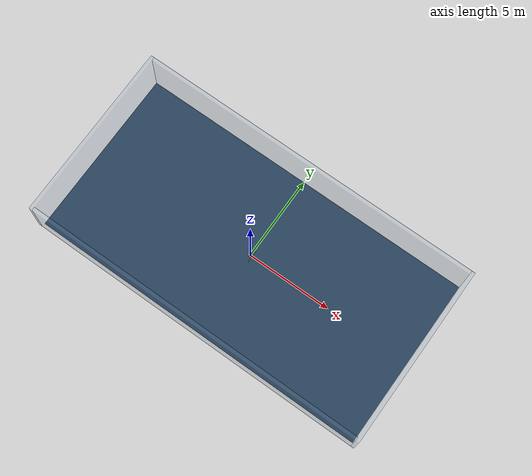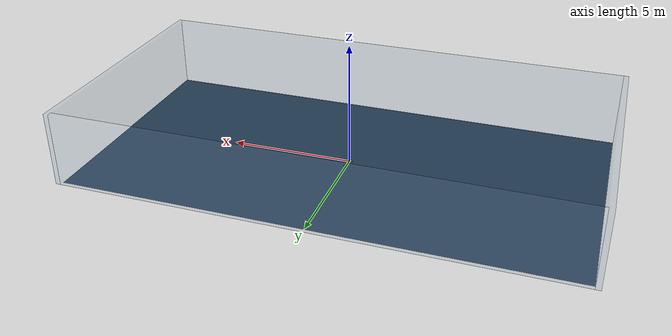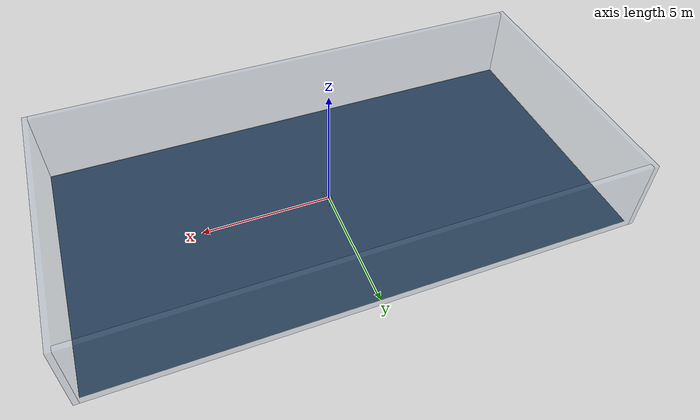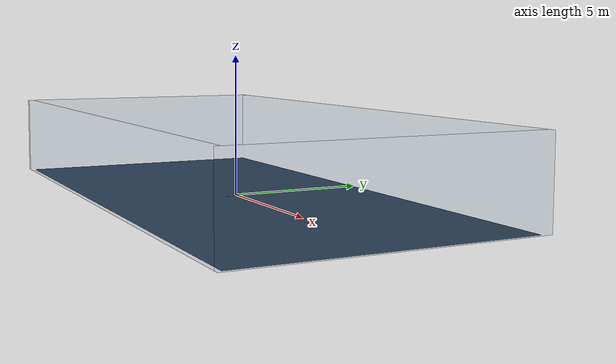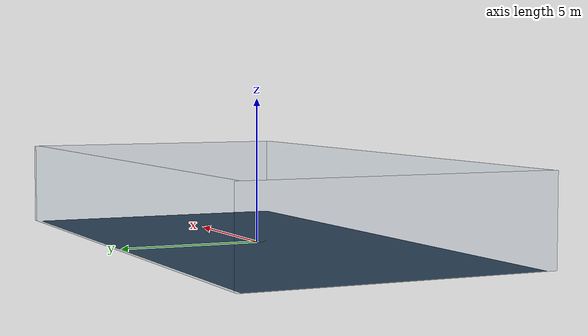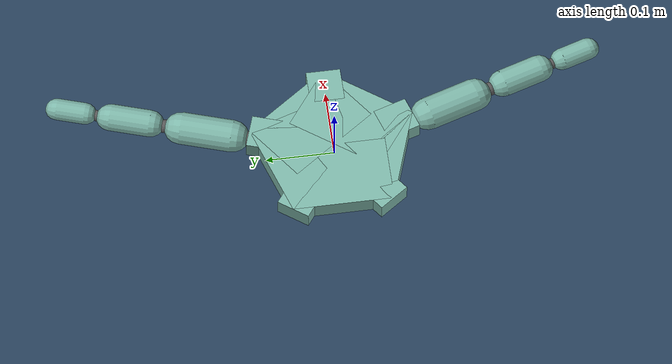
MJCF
<mujoco model="AquariumArena">
  <compiler angle="radian"/>
  <option density="1000" viscosity="0.00089999999999999998"/>
  <visual>
    <headlight ambient="0.40000000000000002 0.40000000000000002 0.40000000000000002" diffuse="0.80000000000000004 0.80000000000000004 0.80000000000000004" specular="0.10000000000000001 0.10000000000000001 0.10000000000000001"/>
  </visual>
  <default>
    <default class="/"/>
    <default class="BrittleStarMorphology/">
      <geom contype="1" conaffinity="0" condim="4" density="2000"/>
    </default>
  </default>
  <asset>
    <texture name="//unnamed_texture_0" type="skybox" builtin="flat" rgb1="1 1 1" rgb2="1 1 1" width="200" height="200"/>
    <texture name="groundplane" type="2d" builtin="checker" rgb1="0.20000000000000001 0.29999999999999999 0.40000000000000002" rgb2="0.10000000000000001 0.20000000000000001 0.29999999999999999" mark="edge" markrgb="0.80000000000000004 0.80000000000000004 0.80000000000000004" width="200" height="200"/>
    <material name="groundplane" class="/" texture="groundplane" texrepeat="2 2" texuniform="true" reflectance="0.20000000000000001"/>
  </asset>
  <worldbody>
    <camera name="top_camera" class="/" pos="0 0 20" quat="1 0 0 0"/>
    <light name="//unnamed_light_0" class="/" directional="true" castshadow="false" pos="-20 0 20" dir="0 0 -0.5" diffuse="0.10000000000000001 0.10000000000000001 0.10000000000000001"/>
    <geom name="groundplane" class="/" type="plane" contype="0" conaffinity="1" condim="4" size="10 5 0.25" material="groundplane"/>
    <geom name="north_wall" class="/" type="box" contype="0" conaffinity="0" size="10 0.10000000000000001 1.5" rgba="0.45098039215686275 0.57647058823529407 0.70196078431372544 0.19607843137254902" pos="0 5.0999999999999996 1.5"/>
    <geom name="south_wall" class="/" type="box" contype="0" conaffinity="0" size="10 0.10000000000000001 1.5" rgba="0.45098039215686275 0.57647058823529407 0.70196078431372544 0.19607843137254902" pos="0 -5.0999999999999996 1.5"/>
    <geom name="east_wall" class="/" type="box" contype="0" conaffinity="0" size="0.10000000000000001 5.2000000000000002 1.5" rgba="0.45098039215686275 0.57647058823529407 0.70196078431372544 0.19607843137254902" pos="-10.1 0 1.5"/>
    <geom name="west_wall" class="/" type="box" contype="0" conaffinity="0" size="0.10000000000000001 5.2000000000000002 1.5" rgba="0.45098039215686275 0.57647058823529407 0.70196078431372544 0.19607843137254902" pos="10.1 0 1.5"/>
    <geom name="north_wall_collider" class="/" type="plane" contype="0" conaffinity="1" size="10 0.10000000000000001 1.5" rgba="0 0 0 0" pos="0 5.0999999999999996 1.5" euler="1.5707963267948966 0 0"/>
    <geom name="south_wall_collider" class="/" type="plane" contype="0" conaffinity="1" size="10 0.10000000000000001 1.5" rgba="0 0 0 0" pos="0 -5.0999999999999996 1.5" euler="-1.5707963267948966 0 0"/>
    <geom name="east_wall_collider" class="/" type="plane" contype="0" conaffinity="1" size="0.10000000000000001 5.2000000000000002 1.5" rgba="0 0 0 0" pos="-10.1 0 1.5" euler="0 1.5707963267948966 0"/>
    <geom name="west_wall_collider" class="/" type="plane" contype="0" conaffinity="1" size="0.10000000000000001 5.2000000000000002 1.5" rgba="0 0 0 0" pos="10.1 0 1.5" euler="0 -1.5707963267948966 0"/>
    <site name="AquariumArena_attachment_BrittleStarMorphology" class="/"/>
    <body name="BrittleStarMorphology/">
      <freejoint name="BrittleStarMorphology/freejoint/"/>
      <body name="BrittleStarMorphology/central_disk" pos="0 0 0" euler="0 0 0">
        <geom name="BrittleStarMorphology/central_disk_pentagon_side_0" class="BrittleStarMorphology/" type="box" contype="0" conaffinity="0" size="0.050563562148434216 0.073473156536559142 0.025000000000000001" rgba="0.49019607843137253 0.70980392156862748 0.6588235294117647 1" mass="0" pos="0.040906781074217108 0.029720516134223551 0" euler="0 0 0.62831853071795862"/>
        <geom name="BrittleStarMorphology/central_disk_pentagon_side_1" class="BrittleStarMorphology/" type="box" contype="0" conaffinity="0" size="0.050563562148434216 0.073473156536559142 0.025000000000000001" rgba="0.49019607843137253 0.70980392156862748 0.6588235294117647 1" mass="0" pos="-0.015624999999999997 0.048088805268363337 0" euler="0 0 1.8849555921538759"/>
        <geom name="BrittleStarMorphology/central_disk_pentagon_side_2" class="BrittleStarMorphology/" type="box" contype="0" conaffinity="0" size="0.050563562148434216 0.073473156536559142 0.025000000000000001" rgba="0.49019607843137253 0.70980392156862748 0.6588235294117647 1" mass="0" pos="-0.050563562148434216 6.1922504538568225e-18 0" euler="0 0 3.1415926535897931"/>
        <geom name="BrittleStarMorphology/central_disk_pentagon_side_3" class="BrittleStarMorphology/" type="box" contype="0" conaffinity="0" size="0.050563562148434216 0.073473156536559142 0.025000000000000001" rgba="0.49019607843137253 0.70980392156862748 0.6588235294117647 1" mass="0" pos="-0.015625000000000007 -0.048088805268363337 0" euler="0 0 4.3982297150257104"/>
        <geom name="BrittleStarMorphology/central_disk_pentagon_side_4" class="BrittleStarMorphology/" type="box" contype="0" conaffinity="0" size="0.050563562148434216 0.073473156536559142 0.025000000000000001" rgba="0.49019607843137253 0.70980392156862748 0.6588235294117647 1" mass="0" pos="0.040906781074217101 -0.029720516134223562 0" euler="0 0 5.6548667764616276"/>
        <geom name="BrittleStarMorphology/central_disk_pentagon_collider" class="BrittleStarMorphology/" type="cylinder" contype="1" conaffinity="0" size="0.125 0.025000000000000001" rgba="0 0 0 0" pos="0 0 0" euler="0 0 0"/>
        <geom name="BrittleStarMorphology/central_disk_arm_connector_0" class="BrittleStarMorphology/" type="box" contype="0" conaffinity="0" size="0.025000000000000001 0.025000000000000001 0.025000000000000001" rgba="0.49019607843137253 0.70980392156862748 0.6588235294117647 1" pos="0.10000000000000001 0 0" euler="0 0 0"/>
        <geom name="BrittleStarMorphology/central_disk_arm_connector_1" class="BrittleStarMorphology/" type="box" contype="0" conaffinity="0" size="0.025000000000000001 0.025000000000000001 0.025000000000000001" rgba="0.49019607843137253 0.70980392156862748 0.6588235294117647 1" pos="0.030901699437494747 0.095105651629515356 0" euler="0 0 1.2566370614359172"/>
        <geom name="BrittleStarMorphology/central_disk_arm_connector_2" class="BrittleStarMorphology/" type="box" contype="0" conaffinity="0" size="0.025000000000000001 0.025000000000000001 0.025000000000000001" rgba="0.49019607843137253 0.70980392156862748 0.6588235294117647 1" pos="-0.080901699437494742 0.058778525229247328 0" euler="0 0 2.5132741228718345"/>
        <geom name="BrittleStarMorphology/central_disk_arm_connector_3" class="BrittleStarMorphology/" type="box" contype="0" conaffinity="0" size="0.025000000000000001 0.025000000000000001 0.025000000000000001" rgba="0.49019607843137253 0.70980392156862748 0.6588235294117647 1" pos="-0.080901699437494756 -0.058778525229247307 0" euler="0 0 3.7699111843077517"/>
        <geom name="BrittleStarMorphology/central_disk_arm_connector_4" class="BrittleStarMorphology/" type="box" contype="0" conaffinity="0" size="0.025000000000000001 0.025000000000000001 0.025000000000000001" rgba="0.49019607843137253 0.70980392156862748 0.6588235294117647 1" pos="0.030901699437494726 -0.09510565162951537 0" euler="0 0 5.026548245743669"/>
        <body name="BrittleStarMorphology/arm_0" pos="0.125 0 0" euler="0 0 0"/>
        <body name="BrittleStarMorphology/arm_1" pos="0.038627124296868431 0.11888206453689419 0" euler="0 0 1.2566370614359172">
          <body name="BrittleStarMorphology/arm_1_segment_0" pos="0 0 0" euler="0 0 0">
            <geom name="BrittleStarMorphology/arm_1_segment_0_capsule" class="BrittleStarMorphology/" type="capsule" size="0.025000000000000001 0.037499999999999999" rgba="0.49019607843137253 0.70980392156862748 0.6588235294117647 1" pos="0.0625 0 0" euler="0 1.5707963267948966 0"/>
            <geom name="BrittleStarMorphology/arm_1_segment_0_connector" class="BrittleStarMorphology/" type="sphere" contype="0" conaffinity="0" size="0.012500000000000001" rgba="0.34901960784313724 0.34901960784313724 0.34901960784313724 1" pos="0 0 0"/>
            <joint name="BrittleStarMorphology/arm_1_segment_0_in_plane_joint" class="BrittleStarMorphology/" type="hinge" axis="0 0 1" limited="true" stiffness="0.01" range="-0.52359877559829882 0.52359877559829882" armature="0.02" damping="0.10000000000000001"/>
            <joint name="BrittleStarMorphology/arm_1_segment_0_out_of_plane_joint" class="BrittleStarMorphology/" type="hinge" axis="0 -1 0" limited="true" stiffness="0.01" range="-0.52359877559829882 0.52359877559829882" armature="0.02" damping="0.10000000000000001"/>
            <site name="BrittleStarMorphology/arm_1_segment_0_contact_site" class="BrittleStarMorphology/" type="capsule" group="3" rgba="0.71764705882352942 0.33725490196078434 0.34901960784313724 0.5" size="0.025250000000000002 0.037499999999999999" pos="0.0625 0 0" euler="0 1.5707963267948966 0"/>
            <body name="BrittleStarMorphology/arm_1_segment_1" pos="0.125 0 0" euler="0 0 0">
              <geom name="BrittleStarMorphology/arm_1_segment_1_capsule" class="BrittleStarMorphology/" type="capsule" size="0.020833333333333336 0.029166666666666667" rgba="0.49019607843137253 0.70980392156862748 0.6588235294117647 1" pos="0.050000000000000003 0 0" euler="0 1.5707963267948966 0"/>
              <geom name="BrittleStarMorphology/arm_1_segment_1_connector" class="BrittleStarMorphology/" type="sphere" contype="0" conaffinity="0" size="0.010416666666666668" rgba="0.34901960784313724 0.34901960784313724 0.34901960784313724 1" pos="0 0 0"/>
              <joint name="BrittleStarMorphology/arm_1_segment_1_in_plane_joint" class="BrittleStarMorphology/" type="hinge" axis="0 0 1" limited="true" stiffness="0.01" range="-0.52359877559829882 0.52359877559829882" armature="0.02" damping="0.10000000000000001"/>
              <joint name="BrittleStarMorphology/arm_1_segment_1_out_of_plane_joint" class="BrittleStarMorphology/" type="hinge" axis="0 -1 0" limited="true" stiffness="0.01" range="-0.52359877559829882 0.52359877559829882" armature="0.02" damping="0.10000000000000001"/>
              <site name="BrittleStarMorphology/arm_1_segment_1_contact_site" class="BrittleStarMorphology/" type="capsule" group="3" rgba="0.71764705882352942 0.33725490196078434 0.34901960784313724 0.5" size="0.02104166666666667 0.029166666666666667" pos="0.050000000000000003 0 0" euler="0 1.5707963267948966 0"/>
              <body name="BrittleStarMorphology/arm_1_segment_2" pos="0.10000000000000001 0 0" euler="0 0 0">
                <geom name="BrittleStarMorphology/arm_1_segment_2_capsule" class="BrittleStarMorphology/" type="capsule" size="0.01666666666666667 0.020833333333333336" rgba="0.49019607843137253 0.70980392156862748 0.6588235294117647 1" pos="0.037500000000000006 0 0" euler="0 1.5707963267948966 0"/>
                <geom name="BrittleStarMorphology/arm_1_segment_2_connector" class="BrittleStarMorphology/" type="sphere" contype="0" conaffinity="0" size="0.008333333333333335" rgba="0.34901960784313724 0.34901960784313724 0.34901960784313724 1" pos="0 0 0"/>
                <joint name="BrittleStarMorphology/arm_1_segment_2_in_plane_joint" class="BrittleStarMorphology/" type="hinge" axis="0 0 1" limited="true" stiffness="0.01" range="-0.52359877559829882 0.52359877559829882" armature="0.02" damping="0.10000000000000001"/>
                <joint name="BrittleStarMorphology/arm_1_segment_2_out_of_plane_joint" class="BrittleStarMorphology/" type="hinge" axis="0 -1 0" limited="true" stiffness="0.01" range="-0.52359877559829882 0.52359877559829882" armature="0.02" damping="0.10000000000000001"/>
                <site name="BrittleStarMorphology/arm_1_segment_2_contact_site" class="BrittleStarMorphology/" type="capsule" group="3" rgba="0.71764705882352942 0.33725490196078434 0.34901960784313724 0.5" size="0.016833333333333336 0.020833333333333336" pos="0.037500000000000006 0 0" euler="0 1.5707963267948966 0"/>
              </body>
            </body>
          </body>
        </body>
        <body name="BrittleStarMorphology/arm_2" pos="-0.10112712429686842 0.073473156536559156 0" euler="0 0 2.5132741228718345"/>
        <body name="BrittleStarMorphology/arm_3" pos="-0.10112712429686843 -0.073473156536559128 0" euler="0 0 3.7699111843077517"/>
        <body name="BrittleStarMorphology/arm_4" pos="0.038627124296868404 -0.11888206453689421 0" euler="0 0 5.026548245743669">
          <body name="BrittleStarMorphology/arm_4_segment_0" pos="0 0 0" euler="0 0 0">
            <geom name="BrittleStarMorphology/arm_4_segment_0_capsule" class="BrittleStarMorphology/" type="capsule" size="0.025000000000000001 0.037499999999999999" rgba="0.49019607843137253 0.70980392156862748 0.6588235294117647 1" pos="0.0625 0 0" euler="0 1.5707963267948966 0"/>
            <geom name="BrittleStarMorphology/arm_4_segment_0_connector" class="BrittleStarMorphology/" type="sphere" contype="0" conaffinity="0" size="0.012500000000000001" rgba="0.34901960784313724 0.34901960784313724 0.34901960784313724 1" pos="0 0 0"/>
            <joint name="BrittleStarMorphology/arm_4_segment_0_in_plane_joint" class="BrittleStarMorphology/" type="hinge" axis="0 0 1" limited="true" stiffness="0.01" range="-0.52359877559829882 0.52359877559829882" armature="0.02" damping="0.10000000000000001"/>
            <joint name="BrittleStarMorphology/arm_4_segment_0_out_of_plane_joint" class="BrittleStarMorphology/" type="hinge" axis="0 -1 0" limited="true" stiffness="0.01" range="-0.52359877559829882 0.52359877559829882" armature="0.02" damping="0.10000000000000001"/>
            <site name="BrittleStarMorphology/arm_4_segment_0_contact_site" class="BrittleStarMorphology/" type="capsule" group="3" rgba="0.71764705882352942 0.33725490196078434 0.34901960784313724 0.5" size="0.025250000000000002 0.037499999999999999" pos="0.0625 0 0" euler="0 1.5707963267948966 0"/>
            <body name="BrittleStarMorphology/arm_4_segment_1" pos="0.125 0 0" euler="0 0 0">
              <geom name="BrittleStarMorphology/arm_4_segment_1_capsule" class="BrittleStarMorphology/" type="capsule" size="0.020833333333333336 0.029166666666666667" rgba="0.49019607843137253 0.70980392156862748 0.6588235294117647 1" pos="0.050000000000000003 0 0" euler="0 1.5707963267948966 0"/>
              <geom name="BrittleStarMorphology/arm_4_segment_1_connector" class="BrittleStarMorphology/" type="sphere" contype="0" conaffinity="0" size="0.010416666666666668" rgba="0.34901960784313724 0.34901960784313724 0.34901960784313724 1" pos="0 0 0"/>
              <joint name="BrittleStarMorphology/arm_4_segment_1_in_plane_joint" class="BrittleStarMorphology/" type="hinge" axis="0 0 1" limited="true" stiffness="0.01" range="-0.52359877559829882 0.52359877559829882" armature="0.02" damping="0.10000000000000001"/>
              <joint name="BrittleStarMorphology/arm_4_segment_1_out_of_plane_joint" class="BrittleStarMorphology/" type="hinge" axis="0 -1 0" limited="true" stiffness="0.01" range="-0.52359877559829882 0.52359877559829882" armature="0.02" damping="0.10000000000000001"/>
              <site name="BrittleStarMorphology/arm_4_segment_1_contact_site" class="BrittleStarMorphology/" type="capsule" group="3" rgba="0.71764705882352942 0.33725490196078434 0.34901960784313724 0.5" size="0.02104166666666667 0.029166666666666667" pos="0.050000000000000003 0 0" euler="0 1.5707963267948966 0"/>
              <body name="BrittleStarMorphology/arm_4_segment_2" pos="0.10000000000000001 0 0" euler="0 0 0">
                <geom name="BrittleStarMorphology/arm_4_segment_2_capsule" class="BrittleStarMorphology/" type="capsule" size="0.01666666666666667 0.020833333333333336" rgba="0.49019607843137253 0.70980392156862748 0.6588235294117647 1" pos="0.037500000000000006 0 0" euler="0 1.5707963267948966 0"/>
                <geom name="BrittleStarMorphology/arm_4_segment_2_connector" class="BrittleStarMorphology/" type="sphere" contype="0" conaffinity="0" size="0.008333333333333335" rgba="0.34901960784313724 0.34901960784313724 0.34901960784313724 1" pos="0 0 0"/>
                <joint name="BrittleStarMorphology/arm_4_segment_2_in_plane_joint" class="BrittleStarMorphology/" type="hinge" axis="0 0 1" limited="true" stiffness="0.01" range="-0.52359877559829882 0.52359877559829882" armature="0.02" damping="0.10000000000000001"/>
                <joint name="BrittleStarMorphology/arm_4_segment_2_out_of_plane_joint" class="BrittleStarMorphology/" type="hinge" axis="0 -1 0" limited="true" stiffness="0.01" range="-0.52359877559829882 0.52359877559829882" armature="0.02" damping="0.10000000000000001"/>
                <site name="BrittleStarMorphology/arm_4_segment_2_contact_site" class="BrittleStarMorphology/" type="capsule" group="3" rgba="0.71764705882352942 0.33725490196078434 0.34901960784313724 0.5" size="0.016833333333333336 0.020833333333333336" pos="0.037500000000000006 0 0" euler="0 1.5707963267948966 0"/>
              </body>
            </body>
          </body>
        </body>
        <camera name="BrittleStarMorphology/side_camera" class="BrittleStarMorphology/" mode="track" pos="0 -2 2.5" quat="0.93969262078590843 0.34202014332566871 0 0"/>
      </body>
    </body>
  </worldbody>
  <actuator>
    <position name="BrittleStarMorphology/arm_1_segment_0_in_plane_joint_p_control" class="BrittleStarMorphology/" ctrllimited="true" forcelimited="true" ctrlrange="-0.52359877559829882 0.52359877559829882" forcerange="-5 5" joint="BrittleStarMorphology/arm_1_segment_0_in_plane_joint" kp="50"/>
    <position name="BrittleStarMorphology/arm_1_segment_0_out_of_plane_joint_p_control" class="BrittleStarMorphology/" ctrllimited="true" forcelimited="true" ctrlrange="-0.52359877559829882 0.52359877559829882" forcerange="-5 5" joint="BrittleStarMorphology/arm_1_segment_0_out_of_plane_joint" kp="50"/>
    <position name="BrittleStarMorphology/arm_1_segment_1_in_plane_joint_p_control" class="BrittleStarMorphology/" ctrllimited="true" forcelimited="true" ctrlrange="-0.52359877559829882 0.52359877559829882" forcerange="-4.166666666666667 4.166666666666667" joint="BrittleStarMorphology/arm_1_segment_1_in_plane_joint" kp="50"/>
    <position name="BrittleStarMorphology/arm_1_segment_1_out_of_plane_joint_p_control" class="BrittleStarMorphology/" ctrllimited="true" forcelimited="true" ctrlrange="-0.52359877559829882 0.52359877559829882" forcerange="-4.166666666666667 4.166666666666667" joint="BrittleStarMorphology/arm_1_segment_1_out_of_plane_joint" kp="50"/>
    <position name="BrittleStarMorphology/arm_1_segment_2_in_plane_joint_p_control" class="BrittleStarMorphology/" ctrllimited="true" forcelimited="true" ctrlrange="-0.52359877559829882 0.52359877559829882" forcerange="-3.3333333333333339 3.3333333333333339" joint="BrittleStarMorphology/arm_1_segment_2_in_plane_joint" kp="50"/>
    <position name="BrittleStarMorphology/arm_1_segment_2_out_of_plane_joint_p_control" class="BrittleStarMorphology/" ctrllimited="true" forcelimited="true" ctrlrange="-0.52359877559829882 0.52359877559829882" forcerange="-3.3333333333333339 3.3333333333333339" joint="BrittleStarMorphology/arm_1_segment_2_out_of_plane_joint" kp="50"/>
    <position name="BrittleStarMorphology/arm_4_segment_0_in_plane_joint_p_control" class="BrittleStarMorphology/" ctrllimited="true" forcelimited="true" ctrlrange="-0.52359877559829882 0.52359877559829882" forcerange="-5 5" joint="BrittleStarMorphology/arm_4_segment_0_in_plane_joint" kp="50"/>
    <position name="BrittleStarMorphology/arm_4_segment_0_out_of_plane_joint_p_control" class="BrittleStarMorphology/" ctrllimited="true" forcelimited="true" ctrlrange="-0.52359877559829882 0.52359877559829882" forcerange="-5 5" joint="BrittleStarMorphology/arm_4_segment_0_out_of_plane_joint" kp="50"/>
    <position name="BrittleStarMorphology/arm_4_segment_1_in_plane_joint_p_control" class="BrittleStarMorphology/" ctrllimited="true" forcelimited="true" ctrlrange="-0.52359877559829882 0.52359877559829882" forcerange="-4.166666666666667 4.166666666666667" joint="BrittleStarMorphology/arm_4_segment_1_in_plane_joint" kp="50"/>
    <position name="BrittleStarMorphology/arm_4_segment_1_out_of_plane_joint_p_control" class="BrittleStarMorphology/" ctrllimited="true" forcelimited="true" ctrlrange="-0.52359877559829882 0.52359877559829882" forcerange="-4.166666666666667 4.166666666666667" joint="BrittleStarMorphology/arm_4_segment_1_out_of_plane_joint" kp="50"/>
    <position name="BrittleStarMorphology/arm_4_segment_2_in_plane_joint_p_control" class="BrittleStarMorphology/" ctrllimited="true" forcelimited="true" ctrlrange="-0.52359877559829882 0.52359877559829882" forcerange="-3.3333333333333339 3.3333333333333339" joint="BrittleStarMorphology/arm_4_segment_2_in_plane_joint" kp="50"/>
    <position name="BrittleStarMorphology/arm_4_segment_2_out_of_plane_joint_p_control" class="BrittleStarMorphology/" ctrllimited="true" forcelimited="true" ctrlrange="-0.52359877559829882 0.52359877559829882" forcerange="-3.3333333333333339 3.3333333333333339" joint="BrittleStarMorphology/arm_4_segment_2_out_of_plane_joint" kp="50"/>
  </actuator>
  <sensor>
    <framepos name="BrittleStarMorphology/central_disk_framepos_sensor" objtype="xbody" objname="BrittleStarMorphology/central_disk"/>
    <framequat name="BrittleStarMorphology/central_disk_framequat_sensor" objtype="xbody" objname="BrittleStarMorphology/central_disk"/>
    <framelinvel name="BrittleStarMorphology/central_disk_framelinvel_sensor" objtype="xbody" objname="BrittleStarMorphology/central_disk"/>
    <frameangvel name="BrittleStarMorphology/central_disk_frameangvel_sensor" objtype="xbody" objname="BrittleStarMorphology/central_disk"/>
    <framepos name="BrittleStarMorphology/arm_1_segment_0_position_sensor" objtype="geom" objname="BrittleStarMorphology/arm_1_segment_0_capsule"/>
    <jointpos name="BrittleStarMorphology/arm_1_segment_0_in_plane_joint_jointpos_sensor" joint="BrittleStarMorphology/arm_1_segment_0_in_plane_joint"/>
    <jointvel name="BrittleStarMorphology/arm_1_segment_0_in_plane_joint_jointvel_sensor" joint="BrittleStarMorphology/arm_1_segment_0_in_plane_joint"/>
    <jointactuatorfrc name="BrittleStarMorphology/arm_1_segment_0_in_plane_joint_actuatorfrc_sensor" joint="BrittleStarMorphology/arm_1_segment_0_in_plane_joint"/>
    <jointpos name="BrittleStarMorphology/arm_1_segment_0_out_of_plane_joint_jointpos_sensor" joint="BrittleStarMorphology/arm_1_segment_0_out_of_plane_joint"/>
    <jointvel name="BrittleStarMorphology/arm_1_segment_0_out_of_plane_joint_jointvel_sensor" joint="BrittleStarMorphology/arm_1_segment_0_out_of_plane_joint"/>
    <jointactuatorfrc name="BrittleStarMorphology/arm_1_segment_0_out_of_plane_joint_actuatorfrc_sensor" joint="BrittleStarMorphology/arm_1_segment_0_out_of_plane_joint"/>
    <actuatorfrc name="BrittleStarMorphology/arm_1_segment_0_in_plane_joint_p_control_actuatorfrc_sensor" actuator="BrittleStarMorphology/arm_1_segment_0_in_plane_joint_p_control"/>
    <actuatorfrc name="BrittleStarMorphology/arm_1_segment_0_out_of_plane_joint_p_control_actuatorfrc_sensor" actuator="BrittleStarMorphology/arm_1_segment_0_out_of_plane_joint_p_control"/>
    <touch name="BrittleStarMorphology/arm_1_segment_0_contact_site_contact_sensor" site="BrittleStarMorphology/arm_1_segment_0_contact_site"/>
    <framepos name="BrittleStarMorphology/arm_1_segment_1_position_sensor" objtype="geom" objname="BrittleStarMorphology/arm_1_segment_1_capsule"/>
    <jointpos name="BrittleStarMorphology/arm_1_segment_1_in_plane_joint_jointpos_sensor" joint="BrittleStarMorphology/arm_1_segment_1_in_plane_joint"/>
    <jointvel name="BrittleStarMorphology/arm_1_segment_1_in_plane_joint_jointvel_sensor" joint="BrittleStarMorphology/arm_1_segment_1_in_plane_joint"/>
    <jointactuatorfrc name="BrittleStarMorphology/arm_1_segment_1_in_plane_joint_actuatorfrc_sensor" joint="BrittleStarMorphology/arm_1_segment_1_in_plane_joint"/>
    <jointpos name="BrittleStarMorphology/arm_1_segment_1_out_of_plane_joint_jointpos_sensor" joint="BrittleStarMorphology/arm_1_segment_1_out_of_plane_joint"/>
    <jointvel name="BrittleStarMorphology/arm_1_segment_1_out_of_plane_joint_jointvel_sensor" joint="BrittleStarMorphology/arm_1_segment_1_out_of_plane_joint"/>
    <jointactuatorfrc name="BrittleStarMorphology/arm_1_segment_1_out_of_plane_joint_actuatorfrc_sensor" joint="BrittleStarMorphology/arm_1_segment_1_out_of_plane_joint"/>
    <actuatorfrc name="BrittleStarMorphology/arm_1_segment_1_in_plane_joint_p_control_actuatorfrc_sensor" actuator="BrittleStarMorphology/arm_1_segment_1_in_plane_joint_p_control"/>
    <actuatorfrc name="BrittleStarMorphology/arm_1_segment_1_out_of_plane_joint_p_control_actuatorfrc_sensor" actuator="BrittleStarMorphology/arm_1_segment_1_out_of_plane_joint_p_control"/>
    <touch name="BrittleStarMorphology/arm_1_segment_1_contact_site_contact_sensor" site="BrittleStarMorphology/arm_1_segment_1_contact_site"/>
    <framepos name="BrittleStarMorphology/arm_1_segment_2_position_sensor" objtype="geom" objname="BrittleStarMorphology/arm_1_segment_2_capsule"/>
    <jointpos name="BrittleStarMorphology/arm_1_segment_2_in_plane_joint_jointpos_sensor" joint="BrittleStarMorphology/arm_1_segment_2_in_plane_joint"/>
    <jointvel name="BrittleStarMorphology/arm_1_segment_2_in_plane_joint_jointvel_sensor" joint="BrittleStarMorphology/arm_1_segment_2_in_plane_joint"/>
    <jointactuatorfrc name="BrittleStarMorphology/arm_1_segment_2_in_plane_joint_actuatorfrc_sensor" joint="BrittleStarMorphology/arm_1_segment_2_in_plane_joint"/>
    <jointpos name="BrittleStarMorphology/arm_1_segment_2_out_of_plane_joint_jointpos_sensor" joint="BrittleStarMorphology/arm_1_segment_2_out_of_plane_joint"/>
    <jointvel name="BrittleStarMorphology/arm_1_segment_2_out_of_plane_joint_jointvel_sensor" joint="BrittleStarMorphology/arm_1_segment_2_out_of_plane_joint"/>
    <jointactuatorfrc name="BrittleStarMorphology/arm_1_segment_2_out_of_plane_joint_actuatorfrc_sensor" joint="BrittleStarMorphology/arm_1_segment_2_out_of_plane_joint"/>
    <actuatorfrc name="BrittleStarMorphology/arm_1_segment_2_in_plane_joint_p_control_actuatorfrc_sensor" actuator="BrittleStarMorphology/arm_1_segment_2_in_plane_joint_p_control"/>
    <actuatorfrc name="BrittleStarMorphology/arm_1_segment_2_out_of_plane_joint_p_control_actuatorfrc_sensor" actuator="BrittleStarMorphology/arm_1_segment_2_out_of_plane_joint_p_control"/>
    <touch name="BrittleStarMorphology/arm_1_segment_2_contact_site_contact_sensor" site="BrittleStarMorphology/arm_1_segment_2_contact_site"/>
    <framepos name="BrittleStarMorphology/arm_4_segment_0_position_sensor" objtype="geom" objname="BrittleStarMorphology/arm_4_segment_0_capsule"/>
    <jointpos name="BrittleStarMorphology/arm_4_segment_0_in_plane_joint_jointpos_sensor" joint="BrittleStarMorphology/arm_4_segment_0_in_plane_joint"/>
    <jointvel name="BrittleStarMorphology/arm_4_segment_0_in_plane_joint_jointvel_sensor" joint="BrittleStarMorphology/arm_4_segment_0_in_plane_joint"/>
    <jointactuatorfrc name="BrittleStarMorphology/arm_4_segment_0_in_plane_joint_actuatorfrc_sensor" joint="BrittleStarMorphology/arm_4_segment_0_in_plane_joint"/>
    <jointpos name="BrittleStarMorphology/arm_4_segment_0_out_of_plane_joint_jointpos_sensor" joint="BrittleStarMorphology/arm_4_segment_0_out_of_plane_joint"/>
    <jointvel name="BrittleStarMorphology/arm_4_segment_0_out_of_plane_joint_jointvel_sensor" joint="BrittleStarMorphology/arm_4_segment_0_out_of_plane_joint"/>
    <jointactuatorfrc name="BrittleStarMorphology/arm_4_segment_0_out_of_plane_joint_actuatorfrc_sensor" joint="BrittleStarMorphology/arm_4_segment_0_out_of_plane_joint"/>
    <actuatorfrc name="BrittleStarMorphology/arm_4_segment_0_in_plane_joint_p_control_actuatorfrc_sensor" actuator="BrittleStarMorphology/arm_4_segment_0_in_plane_joint_p_control"/>
    <actuatorfrc name="BrittleStarMorphology/arm_4_segment_0_out_of_plane_joint_p_control_actuatorfrc_sensor" actuator="BrittleStarMorphology/arm_4_segment_0_out_of_plane_joint_p_control"/>
    <touch name="BrittleStarMorphology/arm_4_segment_0_contact_site_contact_sensor" site="BrittleStarMorphology/arm_4_segment_0_contact_site"/>
    <framepos name="BrittleStarMorphology/arm_4_segment_1_position_sensor" objtype="geom" objname="BrittleStarMorphology/arm_4_segment_1_capsule"/>
    <jointpos name="BrittleStarMorphology/arm_4_segment_1_in_plane_joint_jointpos_sensor" joint="BrittleStarMorphology/arm_4_segment_1_in_plane_joint"/>
    <jointvel name="BrittleStarMorphology/arm_4_segment_1_in_plane_joint_jointvel_sensor" joint="BrittleStarMorphology/arm_4_segment_1_in_plane_joint"/>
    <jointactuatorfrc name="BrittleStarMorphology/arm_4_segment_1_in_plane_joint_actuatorfrc_sensor" joint="BrittleStarMorphology/arm_4_segment_1_in_plane_joint"/>
    <jointpos name="BrittleStarMorphology/arm_4_segment_1_out_of_plane_joint_jointpos_sensor" joint="BrittleStarMorphology/arm_4_segment_1_out_of_plane_joint"/>
    <jointvel name="BrittleStarMorphology/arm_4_segment_1_out_of_plane_joint_jointvel_sensor" joint="BrittleStarMorphology/arm_4_segment_1_out_of_plane_joint"/>
    <jointactuatorfrc name="BrittleStarMorphology/arm_4_segment_1_out_of_plane_joint_actuatorfrc_sensor" joint="BrittleStarMorphology/arm_4_segment_1_out_of_plane_joint"/>
    <actuatorfrc name="BrittleStarMorphology/arm_4_segment_1_in_plane_joint_p_control_actuatorfrc_sensor" actuator="BrittleStarMorphology/arm_4_segment_1_in_plane_joint_p_control"/>
    <actuatorfrc name="BrittleStarMorphology/arm_4_segment_1_out_of_plane_joint_p_control_actuatorfrc_sensor" actuator="BrittleStarMorphology/arm_4_segment_1_out_of_plane_joint_p_control"/>
    <touch name="BrittleStarMorphology/arm_4_segment_1_contact_site_contact_sensor" site="BrittleStarMorphology/arm_4_segment_1_contact_site"/>
    <framepos name="BrittleStarMorphology/arm_4_segment_2_position_sensor" objtype="geom" objname="BrittleStarMorphology/arm_4_segment_2_capsule"/>
    <jointpos name="BrittleStarMorphology/arm_4_segment_2_in_plane_joint_jointpos_sensor" joint="BrittleStarMorphology/arm_4_segment_2_in_plane_joint"/>
    <jointvel name="BrittleStarMorphology/arm_4_segment_2_in_plane_joint_jointvel_sensor" joint="BrittleStarMorphology/arm_4_segment_2_in_plane_joint"/>
    <jointactuatorfrc name="BrittleStarMorphology/arm_4_segment_2_in_plane_joint_actuatorfrc_sensor" joint="BrittleStarMorphology/arm_4_segment_2_in_plane_joint"/>
    <jointpos name="BrittleStarMorphology/arm_4_segment_2_out_of_plane_joint_jointpos_sensor" joint="BrittleStarMorphology/arm_4_segment_2_out_of_plane_joint"/>
    <jointvel name="BrittleStarMorphology/arm_4_segment_2_out_of_plane_joint_jointvel_sensor" joint="BrittleStarMorphology/arm_4_segment_2_out_of_plane_joint"/>
    <jointactuatorfrc name="BrittleStarMorphology/arm_4_segment_2_out_of_plane_joint_actuatorfrc_sensor" joint="BrittleStarMorphology/arm_4_segment_2_out_of_plane_joint"/>
    <actuatorfrc name="BrittleStarMorphology/arm_4_segment_2_in_plane_joint_p_control_actuatorfrc_sensor" actuator="BrittleStarMorphology/arm_4_segment_2_in_plane_joint_p_control"/>
    <actuatorfrc name="BrittleStarMorphology/arm_4_segment_2_out_of_plane_joint_p_control_actuatorfrc_sensor" actuator="BrittleStarMorphology/arm_4_segment_2_out_of_plane_joint_p_control"/>
    <touch name="BrittleStarMorphology/arm_4_segment_2_contact_site_contact_sensor" site="BrittleStarMorphology/arm_4_segment_2_contact_site"/>
  </sensor>
</mujoco>
